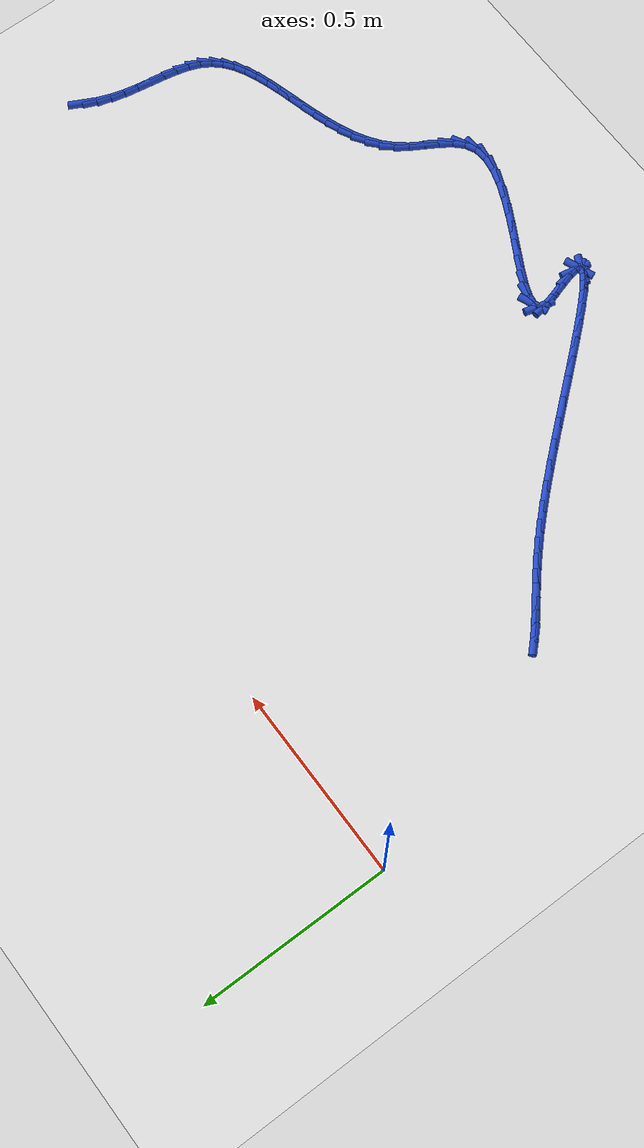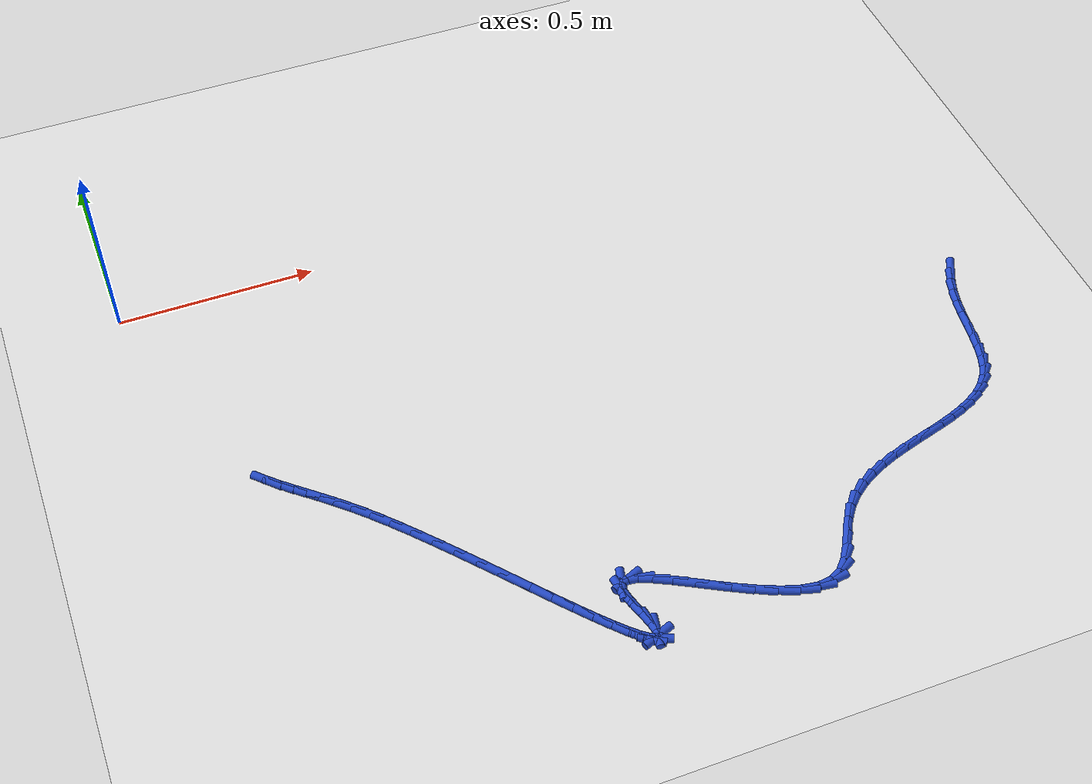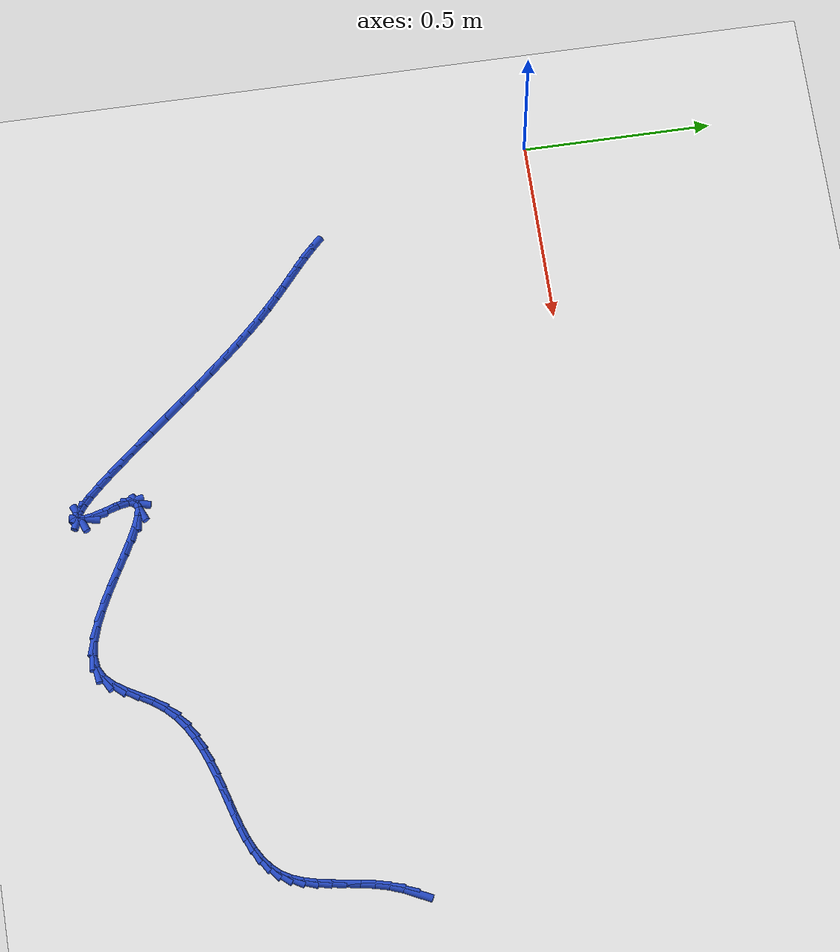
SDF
<sdf version="1.6">
 <world name="default">
  <model name="ground_plane">
   <static>1</static>
   <link name="link">
    <collision name="collision">
     <geometry><plane><normal>0 0 1</normal><size>100 100</size></plane></geometry>
     <surface><friction><ode><mu>100</mu><mu2>50</mu2></ode></friction></surface>
    </collision>
    <visual name="visual">
     <cast_shadows>0</cast_shadows>
     <geometry><plane><normal>0 0 1</normal><size>100 100</size></plane></geometry>
     <material>
      <script><uri>file://media/materials/scripts/gazebo.material</uri><name>Gazebo/WhiteGlow</name></script>
     </material>
    </visual>
   </link>
  </model>
  <model name="line">
   <link name="link_128">
    <pose>2.0384126829129796 -0.5853643524495513 0.01 0 1.57 1.1020676471896071</pose>
    <collision name="collision">
     <geometry><cylinder><radius>0.01</radius><length>0.08</length></cylinder></geometry>
    </collision>
    <visual name="visual">
     <material>
      <script><name>Gazebo/Blue</name><uri>file://media/materials/scripts/gazebo.material</uri></script>
     </material>
     <geometry><cylinder><radius>0.01</radius><length>0.08</length></cylinder></geometry>
    </visual>
   </link>
   <link name="link_129">
    <pose>2.0218537239604073 -0.6180658126746337 0.01 0 1.57 1.2054381293203713</pose>
    <collision name="collision">
     <geometry><cylinder><radius>0.01</radius><length>0.08</length></cylinder></geometry>
    </collision>
    <visual name="visual">
     <material>
      <script><name>Gazebo/Blue</name><uri>file://media/materials/scripts/gazebo.material</uri></script>
     </material>
     <geometry><cylinder><radius>0.01</radius><length>0.08</length></cylinder></geometry>
    </visual>
   </link>
   <link name="link_130">
    <pose>2.0086993570727087 -0.6524533821683262 0.01 0 1.57 1.3068314863150567</pose>
    <collision name="collision">
     <geometry><cylinder><radius>0.01</radius><length>0.08</length></cylinder></geometry>
    </collision>
    <visual name="visual">
     <material>
      <script><name>Gazebo/Blue</name><uri>file://media/materials/scripts/gazebo.material</uri></script>
     </material>
     <geometry><cylinder><radius>0.01</radius><length>0.08</length></cylinder></geometry>
    </visual>
   </link>
   <link name="link_131">
    <pose>1.9989859690418357 -0.6883927585196669 0.01 0 1.57 1.3751119026606904</pose>
    <collision name="collision">
     <geometry><cylinder><radius>0.01</radius><length>0.08</length></cylinder></geometry>
    </collision>
    <visual name="visual">
     <material>
      <script><name>Gazebo/Blue</name><uri>file://media/materials/scripts/gazebo.material</uri></script>
     </material>
     <geometry><cylinder><radius>0.01</radius><length>0.08</length></cylinder></geometry>
    </visual>
   </link>
   <link name="link_132">
    <pose>1.9916957051243742 -0.7251712177328626 0.01 0 1.57 1.4102000938463215</pose>
    <collision name="collision">
     <geometry><cylinder><radius>0.01</radius><length>0.08</length></cylinder></geometry>
    </collision>
    <visual name="visual">
     <material>
      <script><name>Gazebo/Blue</name><uri>file://media/materials/scripts/gazebo.material</uri></script>
     </material>
     <geometry><cylinder><radius>0.01</radius><length>0.08</length></cylinder></geometry>
    </visual>
   </link>
   <link name="link_133">
    <pose>1.9857250589611575 -0.7620290420809289 0.01 0 1.57 1.413053796381409</pose>
    <collision name="collision">
     <geometry><cylinder><radius>0.01</radius><length>0.08</length></cylinder></geometry>
    </collision>
    <visual name="visual">
     <material>
      <script><name>Gazebo/Blue</name><uri>file://media/materials/scripts/gazebo.material</uri></script>
     </material>
     <geometry><cylinder><radius>0.01</radius><length>0.08</length></cylinder></geometry>
    </visual>
   </link>
   <link name="link_134">
    <pose>1.979970524193019 -0.7982065138368796 0.01 0 1.57 1.3818725976547206</pose>
    <collision name="collision">
     <geometry><cylinder><radius>0.01</radius><length>0.08</length></cylinder></geometry>
    </collision>
    <visual name="visual">
     <material>
      <script><name>Gazebo/Blue</name><uri>file://media/materials/scripts/gazebo.material</uri></script>
     </material>
     <geometry><cylinder><radius>0.01</radius><length>0.08</length></cylinder></geometry>
    </visual>
   </link>
   <link name="link_135">
    <pose>1.9733285944607903 -0.8329439152737296 0.01 0 1.57 1.3114530108556537</pose>
    <collision name="collision">
     <geometry><cylinder><radius>0.01</radius><length>0.08</length></cylinder></geometry>
    </collision>
    <visual name="visual">
     <material>
      <script><name>Gazebo/Blue</name><uri>file://media/materials/scripts/gazebo.material</uri></script>
     </material>
     <geometry><cylinder><radius>0.01</radius><length>0.08</length></cylinder></geometry>
    </visual>
   </link>
   <link name="link_136">
    <pose>1.964695763405304 -0.8654815286644909 0.01 0 1.57 1.1933248786386343</pose>
    <collision name="collision">
     <geometry><cylinder><radius>0.01</radius><length>0.08</length></cylinder></geometry>
    </collision>
    <visual name="visual">
     <material>
      <script><name>Gazebo/Blue</name><uri>file://media/materials/scripts/gazebo.material</uri></script>
     </material>
     <geometry><cylinder><radius>0.01</radius><length>0.08</length></cylinder></geometry>
    </visual>
   </link>
   <link name="link_137">
    <pose>1.9529685246673936 -0.8950596362821791 0.01 0 1.57 1.0196400141411681</pose>
    <collision name="collision">
     <geometry><cylinder><radius>0.01</radius><length>0.08</length></cylinder></geometry>
    </collision>
    <visual name="visual">
     <material>
      <script><name>Gazebo/Blue</name><uri>file://media/materials/scripts/gazebo.material</uri></script>
     </material>
     <geometry><cylinder><radius>0.01</radius><length>0.08</length></cylinder></geometry>
    </visual>
   </link>
   <link name="link_138">
    <pose>1.9370633860161814 -0.920934385312817 0.01 0 1.57 0.821339385393191</pose>
    <collision name="collision">
     <geometry><cylinder><radius>0.01</radius><length>0.08</length></cylinder></geometry>
    </collision>
    <visual name="visual">
     <material>
      <script><name>Gazebo/Blue</name><uri>file://media/materials/scripts/gazebo.material</uri></script>
     </material>
     <geometry><cylinder><radius>0.01</radius><length>0.08</length></cylinder></geometry>
    </visual>
   </link>
   <link name="link_139">
    <pose>1.916602653403736 -0.9429213990590894 0.01 0 1.57 0.6492842530441527</pose>
    <collision name="collision">
     <geometry><cylinder><radius>0.01</radius><length>0.08</length></cylinder></geometry>
    </collision>
    <visual name="visual">
     <material>
      <script><name>Gazebo/Blue</name><uri>file://media/materials/scripts/gazebo.material</uri></script>
     </material>
     <geometry><cylinder><radius>0.01</radius><length>0.08</length></cylinder></geometry>
    </visual>
   </link>
   <link name="link_140">
    <pose>1.8920857524666943 -0.9615315810423436 0.01 0 1.57 0.5131232128763107</pose>
    <collision name="collision">
     <geometry><cylinder><radius>0.01</radius><length>0.08</length></cylinder></geometry>
    </collision>
    <visual name="visual">
     <material>
      <script><name>Gazebo/Blue</name><uri>file://media/materials/scripts/gazebo.material</uri></script>
     </material>
     <geometry><cylinder><radius>0.01</radius><length>0.08</length></cylinder></geometry>
    </visual>
   </link>
   <link name="link_141">
    <pose>1.864066895321039 -0.9773192632418778 0.01 0 1.57 0.41164112021405036</pose>
    <collision name="collision">
     <geometry><cylinder><radius>0.01</radius><length>0.08</length></cylinder></geometry>
    </collision>
    <visual name="visual">
     <material>
      <script><name>Gazebo/Blue</name><uri>file://media/materials/scripts/gazebo.material</uri></script>
     </material>
     <geometry><cylinder><radius>0.01</radius><length>0.08</length></cylinder></geometry>
    </visual>
   </link>
   <link name="link_142">
    <pose>1.8331002940827512 -0.9908387776369907 0.01 0 1.57 0.34013238395543505</pose>
    <collision name="collision">
     <geometry><cylinder><radius>0.01</radius><length>0.08</length></cylinder></geometry>
    </collision>
    <visual name="visual">
     <material>
      <script><name>Gazebo/Blue</name><uri>file://media/materials/scripts/gazebo.material</uri></script>
     </material>
     <geometry><cylinder><radius>0.01</radius><length>0.08</length></cylinder></geometry>
    </visual>
   </link>
   <link name="link_143">
    <pose>1.7997401608678123 -1.0026444562069803 0.01 0 1.57 0.2937055890224802</pose>
    <collision name="collision">
     <geometry><cylinder><radius>0.01</radius><length>0.08</length></cylinder></geometry>
    </collision>
    <visual name="visual">
     <material>
      <script><name>Gazebo/Blue</name><uri>file://media/materials/scripts/gazebo.material</uri></script>
     </material>
     <geometry><cylinder><radius>0.01</radius><length>0.08</length></cylinder></geometry>
    </visual>
   </link>
   <link name="link_144">
    <pose>1.7645407077922066 -1.0132906309311447 0.01 0 1.57 0.26856364922360815</pose>
    <collision name="collision">
     <geometry><cylinder><radius>0.01</radius><length>0.08</length></cylinder></geometry>
    </collision>
    <visual name="visual">
     <material>
      <script><name>Gazebo/Blue</name><uri>file://media/materials/scripts/gazebo.material</uri></script>
     </material>
     <geometry><cylinder><radius>0.01</radius><length>0.08</length></cylinder></geometry>
    </visual>
   </link>
   <link name="link_145">
    <pose>1.728056146971915 -1.023331633788782 0.01 0 1.57 0.262258410264597</pose>
    <collision name="collision">
     <geometry><cylinder><radius>0.01</radius><length>0.08</length></cylinder></geometry>
    </collision>
    <visual name="visual">
     <material>
      <script><name>Gazebo/Blue</name><uri>file://media/materials/scripts/gazebo.material</uri></script>
     </material>
     <geometry><cylinder><radius>0.01</radius><length>0.08</length></cylinder></geometry>
    </visual>
   </link>
   <link name="link_146">
    <pose>1.690840690522919 -1.0333217967591908 0.01 0 1.57 0.2736002145043174</pose>
    <collision name="collision">
     <geometry><cylinder><radius>0.01</radius><length>0.08</length></cylinder></geometry>
    </collision>
    <visual name="visual">
     <material>
      <script><name>Gazebo/Blue</name><uri>file://media/materials/scripts/gazebo.material</uri></script>
     </material>
     <geometry><cylinder><radius>0.01</radius><length>0.08</length></cylinder></geometry>
    </visual>
   </link>
   <link name="link_147">
    <pose>1.6534485505612018 -1.043815451821669 0.01 0 1.57 0.3025011852617481</pose>
    <collision name="collision">
     <geometry><cylinder><radius>0.01</radius><length>0.08</length></cylinder></geometry>
    </collision>
    <visual name="visual">
     <material>
      <script><name>Gazebo/Blue</name><uri>file://media/materials/scripts/gazebo.material</uri></script>
     </material>
     <geometry><cylinder><radius>0.01</radius><length>0.08</length></cylinder></geometry>
    </visual>
   </link>
   <link name="link_148">
    <pose>1.6164339392027434 -1.0553669309555151 0.01 0 1.57 0.34981312905699463</pose>
    <collision name="collision">
     <geometry><cylinder><radius>0.01</radius><length>0.08</length></cylinder></geometry>
    </collision>
    <visual name="visual">
     <material>
      <script><name>Gazebo/Blue</name><uri>file://media/materials/scripts/gazebo.material</uri></script>
     </material>
     <geometry><cylinder><radius>0.01</radius><length>0.08</length></cylinder></geometry>
    </visual>
   </link>
   <link name="link_149">
    <pose>1.580351068563528 -1.0685305661400268 0.01 0 1.57 0.41710662039718427</pose>
    <collision name="collision">
     <geometry><cylinder><radius>0.01</radius><length>0.08</length></cylinder></geometry>
    </collision>
    <visual name="visual">
     <material>
      <script><name>Gazebo/Blue</name><uri>file://media/materials/scripts/gazebo.material</uri></script>
     </material>
     <geometry><cylinder><radius>0.01</radius><length>0.08</length></cylinder></geometry>
    </visual>
   </link>
   <link name="link_150">
    <pose>1.5457541507595371 -1.0838606893545026 0.01 0 1.57 0.5062498102647702</pose>
    <collision name="collision">
     <geometry><cylinder><radius>0.01</radius><length>0.08</length></cylinder></geometry>
    </collision>
    <visual name="visual">
     <material>
      <script><name>Gazebo/Blue</name><uri>file://media/materials/scripts/gazebo.material</uri></script>
     </material>
     <geometry><cylinder><radius>0.01</radius><length>0.08</length></cylinder></geometry>
    </visual>
   </link>
   <link name="link_151">
    <pose>1.5131973979067523 -1.1019116325782408 0.01 0 1.57 0.6185767079432916</pose>
    <collision name="collision">
     <geometry><cylinder><radius>0.01</radius><length>0.08</length></cylinder></geometry>
    </collision>
    <visual name="visual">
     <material>
      <script><name>Gazebo/Blue</name><uri>file://media/materials/scripts/gazebo.material</uri></script>
     </material>
     <geometry><cylinder><radius>0.01</radius><length>0.08</length></cylinder></geometry>
    </visual>
   </link>
   <link name="link_152">
    <pose>1.483235022121155 -1.1232377277905394 0.01 0 1.57 0.7535015833589273</pose>
    <collision name="collision">
     <geometry><cylinder><radius>0.01</radius><length>0.08</length></cylinder></geometry>
    </collision>
    <visual name="visual">
     <material>
      <script><name>Gazebo/Blue</name><uri>file://media/materials/scripts/gazebo.material</uri></script>
     </material>
     <geometry><cylinder><radius>0.01</radius><length>0.08</length></cylinder></geometry>
    </visual>
   </link>
   <link name="link_153">
    <pose>1.4564212355187285 -1.1483933069706969 0.01 0 1.57 0.9048321552499752</pose>
    <collision name="collision">
     <geometry><cylinder><radius>0.01</radius><length>0.08</length></cylinder></geometry>
    </collision>
    <visual name="visual">
     <material>
      <script><name>Gazebo/Blue</name><uri>file://media/materials/scripts/gazebo.material</uri></script>
     </material>
     <geometry><cylinder><radius>0.01</radius><length>0.08</length></cylinder></geometry>
    </visual>
   </link>
   <link name="link_154">
    <pose>1.4332638512727545 -1.1778666488042124 0.01 0 1.57 1.0161937524657672</pose>
    <collision name="collision">
     <geometry><cylinder><radius>0.01</radius><length>0.08</length></cylinder></geometry>
    </collision>
    <visual name="visual">
     <material>
      <script><name>Gazebo/Blue</name><uri>file://media/materials/scripts/gazebo.material</uri></script>
     </material>
     <geometry><cylinder><radius>0.01</radius><length>0.08</length></cylinder></geometry>
    </visual>
   </link>
   <link name="link_155">
    <pose>1.4130796254283404 -1.210450449236132 0.01 0 1.57 1.0406467848830772</pose>
    <collision name="collision">
     <geometry><cylinder><radius>0.01</radius><length>0.08</length></cylinder></geometry>
    </collision>
    <visual name="visual">
     <material>
      <script><name>Gazebo/Blue</name><uri>file://media/materials/scripts/gazebo.material</uri></script>
     </material>
     <geometry><cylinder><radius>0.01</radius><length>0.08</length></cylinder></geometry>
    </visual>
   </link>
   <link name="link_156">
    <pose>1.3939210763352454 -1.2431376419957703 0.01 0 1.57 0.9748246384287034</pose>
    <collision name="collision">
     <geometry><cylinder><radius>0.01</radius><length>0.08</length></cylinder></geometry>
    </collision>
    <visual name="visual">
     <material>
      <script><name>Gazebo/Blue</name><uri>file://media/materials/scripts/gazebo.material</uri></script>
     </material>
     <geometry><cylinder><radius>0.01</radius><length>0.08</length></cylinder></geometry>
    </visual>
   </link>
   <link name="link_157">
    <pose>1.3737796709719956 -1.2728342483974955 0.01 0 1.57 0.7956502030613241</pose>
    <collision name="collision">
     <geometry><cylinder><radius>0.01</radius><length>0.08</length></cylinder></geometry>
    </collision>
    <visual name="visual">
     <material>
      <script><name>Gazebo/Blue</name><uri>file://media/materials/scripts/gazebo.material</uri></script>
     </material>
     <geometry><cylinder><radius>0.01</radius><length>0.08</length></cylinder></geometry>
    </visual>
   </link>
   <link name="link_158">
    <pose>1.3506468763171162 -1.296446289755679 0.01 0 1.57 0.4742439866928621</pose>
    <collision name="collision">
     <geometry><cylinder><radius>0.01</radius><length>0.08</length></cylinder></geometry>
    </collision>
    <visual name="visual">
     <material>
      <script><name>Gazebo/Blue</name><uri>file://media/materials/scripts/gazebo.material</uri></script>
     </material>
     <geometry><cylinder><radius>0.01</radius><length>0.08</length></cylinder></geometry>
    </visual>
   </link>
   <link name="link_159">
    <pose>1.322517897989618 -1.310885359134001 0.01 0 1.57 0.1036612644955116</pose>
    <collision name="collision">
     <geometry><cylinder><radius>0.01</radius><length>0.08</length></cylinder></geometry>
    </collision>
    <visual name="visual">
     <material>
      <script><name>Gazebo/Blue</name><uri>file://media/materials/scripts/gazebo.material</uri></script>
     </material>
     <geometry><cylinder><radius>0.01</radius><length>0.08</length></cylinder></geometry>
    </visual>
   </link>
   <link name="link_160">
    <pose>1.2883143547766815 -1.3144436963717088 0.01 0 1.57 -0.14795668207671786</pose>
    <collision name="collision">
     <geometry><cylinder><radius>0.01</radius><length>0.08</length></cylinder></geometry>
    </collision>
    <visual name="visual">
     <material>
      <script><name>Gazebo/Blue</name><uri>file://media/materials/scripts/gazebo.material</uri></script>
     </material>
     <geometry><cylinder><radius>0.01</radius><length>0.08</length></cylinder></geometry>
    </visual>
   </link>
   <link name="link_161">
    <pose>1.2490947540528432 -1.3085981768888404 0.01 0 1.57 -0.30131071201421467</pose>
    <collision name="collision">
     <geometry><cylinder><radius>0.01</radius><length>0.08</length></cylinder></geometry>
    </collision>
    <visual name="visual">
     <material>
      <script><name>Gazebo/Blue</name><uri>file://media/materials/scripts/gazebo.material</uri></script>
     </material>
     <geometry><cylinder><radius>0.01</radius><length>0.08</length></cylinder></geometry>
    </visual>
   </link>
   <link name="link_162">
    <pose>1.2062178975193902 -1.2952732090294024 0.01 0 1.57 -0.39586501944337904</pose>
    <collision name="collision">
     <geometry><cylinder><radius>0.01</radius><length>0.08</length></cylinder></geometry>
    </collision>
    <visual name="visual">
     <material>
      <script><name>Gazebo/Blue</name><uri>file://media/materials/scripts/gazebo.material</uri></script>
     </material>
     <geometry><cylinder><radius>0.01</radius><length>0.08</length></cylinder></geometry>
    </visual>
   </link>
   <link name="link_163">
    <pose>1.1610425868776106 -1.2763932011373997 0.01 0 1.57 -0.45411609971498357</pose>
    <collision name="collision">
     <geometry><cylinder><radius>0.01</radius><length>0.08</length></cylinder></geometry>
    </collision>
    <visual name="visual">
     <material>
      <script><name>Gazebo/Blue</name><uri>file://media/materials/scripts/gazebo.material</uri></script>
     </material>
     <geometry><cylinder><radius>0.01</radius><length>0.08</length></cylinder></geometry>
    </visual>
   </link>
   <link name="link_164">
    <pose>1.1149276238287922 -1.2538825615568385 0.01 0 1.57 -0.48732580417307425</pose>
    <collision name="collision">
     <geometry><cylinder><radius>0.01</radius><length>0.08</length></cylinder></geometry>
    </collision>
    <visual name="visual">
     <material>
      <script><name>Gazebo/Blue</name><uri>file://media/materials/scripts/gazebo.material</uri></script>
     </material>
     <geometry><cylinder><radius>0.01</radius><length>0.08</length></cylinder></geometry>
    </visual>
   </link>
   <link name="link_165">
    <pose>1.0692318100742226 -1.2296656986317238 0.01 0 1.57 -0.5001094218272142</pose>
    <collision name="collision">
     <geometry><cylinder><radius>0.01</radius><length>0.08</length></cylinder></geometry>
    </collision>
    <visual name="visual">
     <material>
      <script><name>Gazebo/Blue</name><uri>file://media/materials/scripts/gazebo.material</uri></script>
     </material>
     <geometry><cylinder><radius>0.01</radius><length>0.08</length></cylinder></geometry>
    </visual>
   </link>
   <link name="link_166">
    <pose>1.025313947315191 -1.2056670207060622 0.01 0 1.57 -0.4919818066167312</pose>
    <collision name="collision">
     <geometry><cylinder><radius>0.01</radius><length>0.08</length></cylinder></geometry>
    </collision>
    <visual name="visual">
     <material>
      <script><name>Gazebo/Blue</name><uri>file://media/materials/scripts/gazebo.material</uri></script>
     </material>
     <geometry><cylinder><radius>0.01</radius><length>0.08</length></cylinder></geometry>
    </visual>
   </link>
   <link name="link_167">
    <pose>0.9845328372529851 -1.1838109361238587 0.01 0 1.57 -0.4558192125467498</pose>
    <collision name="collision">
     <geometry><cylinder><radius>0.01</radius><length>0.08</length></cylinder></geometry>
    </collision>
    <visual name="visual">
     <material>
      <script><name>Gazebo/Blue</name><uri>file://media/materials/scripts/gazebo.material</uri></script>
     </material>
     <geometry><cylinder><radius>0.01</radius><length>0.08</length></cylinder></geometry>
    </visual>
   </link>
   <link name="link_168">
    <pose>0.9482472815888924 -1.1660218532291187 0.01 0 1.57 -0.3698437912424196</pose>
    <collision name="collision">
     <geometry><cylinder><radius>0.01</radius><length>0.08</length></cylinder></geometry>
    </collision>
    <visual name="visual">
     <material>
      <script><name>Gazebo/Blue</name><uri>file://media/materials/scripts/gazebo.material</uri></script>
     </material>
     <geometry><cylinder><radius>0.01</radius><length>0.08</length></cylinder></geometry>
    </visual>
   </link>
   <link name="link_169">
    <pose>0.9178160820242003 -1.1542241803658482 0.01 0 1.57 -0.16565908388711031</pose>
    <collision name="collision">
     <geometry><cylinder><radius>0.01</radius><length>0.08</length></cylinder></geometry>
    </collision>
    <visual name="visual">
     <material>
      <script><name>Gazebo/Blue</name><uri>file://media/materials/scripts/gazebo.material</uri></script>
     </material>
     <geometry><cylinder><radius>0.01</radius><length>0.08</length></cylinder></geometry>
    </visual>
   </link>
   <link name="link_170">
    <pose>0.8945980402601985 -1.1503423258780527 0.01 0 1.57 0.3863749336521207</pose>
    <collision name="collision">
     <geometry><cylinder><radius>0.01</radius><length>0.08</length></cylinder></geometry>
    </collision>
    <visual name="visual">
     <material>
      <script><name>Gazebo/Blue</name><uri>file://media/materials/scripts/gazebo.material</uri></script>
     </material>
     <geometry><cylinder><radius>0.01</radius><length>0.08</length></cylinder></geometry>
    </visual>
   </link>
   <link name="link_171">
    <pose>0.8799519579981742 -1.1563006981097383 0.01 0 1.57 1.3107636914189067</pose>
    <collision name="collision">
     <geometry><cylinder><radius>0.01</radius><length>0.08</length></cylinder></geometry>
    </collision>
    <visual name="visual">
     <material>
      <script><name>Gazebo/Blue</name><uri>file://media/materials/scripts/gazebo.material</uri></script>
     </material>
     <geometry><cylinder><radius>0.01</radius><length>0.08</length></cylinder></geometry>
    </visual>
   </link>
   <link name="link_172">
    <pose>0.8752366369394153 -1.1740237054049105 0.01 0 1.57 -1.3816168170314826</pose>
    <collision name="collision">
     <geometry><cylinder><radius>0.01</radius><length>0.08</length></cylinder></geometry>
    </collision>
    <visual name="visual">
     <material>
      <script><name>Gazebo/Blue</name><uri>file://media/materials/scripts/gazebo.material</uri></script>
     </material>
     <geometry><cylinder><radius>0.01</radius><length>0.08</length></cylinder></geometry>
    </visual>
   </link>
   <link name="link_173">
    <pose>0.8810476598084532 -1.2043733641142413 0.01 0 1.57 -1.2673025398714635</pose>
    <collision name="collision">
     <geometry><cylinder><radius>0.01</radius><length>0.08</length></cylinder></geometry>
    </collision>
    <visual name="visual">
     <material>
      <script><name>Gazebo/Blue</name><uri>file://media/materials/scripts/gazebo.material</uri></script>
     </material>
     <geometry><cylinder><radius>0.01</radius><length>0.08</length></cylinder></geometry>
    </visual>
   </link>
   <link name="link_174">
    <pose>0.8923001995038585 -1.2403046257724817 0.01 0 1.57 -1.283497091787896</pose>
    <collision name="collision">
     <geometry><cylinder><radius>0.01</radius><length>0.08</length></cylinder></geometry>
    </collision>
    <visual name="visual">
     <material>
      <script><name>Gazebo/Blue</name><uri>file://media/materials/scripts/gazebo.material</uri></script>
     </material>
     <geometry><cylinder><radius>0.01</radius><length>0.08</length></cylinder></geometry>
    </visual>
   </link>
   <link name="link_175">
    <pose>0.9014902840317681 -1.271407491944954 0.01 0 1.57 -1.4136832610905539</pose>
    <collision name="collision">
     <geometry><cylinder><radius>0.01</radius><length>0.08</length></cylinder></geometry>
    </collision>
    <visual name="visual">
     <material>
      <script><name>Gazebo/Blue</name><uri>file://media/materials/scripts/gazebo.material</uri></script>
     </material>
     <geometry><cylinder><radius>0.01</radius><length>0.08</length></cylinder></geometry>
    </visual>
   </link>
   <link name="link_176">
    <pose>0.9048341393885383 -1.2925151963942811 0.01 0 1.57 1.3764577175796735</pose>
    <collision name="collision">
     <geometry><cylinder><radius>0.01</radius><length>0.08</length></cylinder></geometry>
    </collision>
    <visual name="visual">
     <material>
      <script><name>Gazebo/Blue</name><uri>file://media/materials/scripts/gazebo.material</uri></script>
     </material>
     <geometry><cylinder><radius>0.01</radius><length>0.08</length></cylinder></geometry>
    </visual>
   </link>
   <link name="link_177">
    <pose>0.9025529431427469 -1.3041053036294403 0.01 0 1.57 0.3610775839142519</pose>
    <collision name="collision">
     <geometry><cylinder><radius>0.01</radius><length>0.08</length></cylinder></geometry>
    </collision>
    <visual name="visual">
     <material>
      <script><name>Gazebo/Blue</name><uri>file://media/materials/scripts/gazebo.material</uri></script>
     </material>
     <geometry><cylinder><radius>0.01</radius><length>0.08</length></cylinder></geometry>
    </visual>
   </link>
   <link name="link_178">
    <pose>0.8950648912478949 -1.306933043671105 0.01 0 1.57 -0.3992317937413595</pose>
    <collision name="collision">
     <geometry><cylinder><radius>0.01</radius><length>0.08</length></cylinder></geometry>
    </collision>
    <visual name="visual">
     <material>
      <script><name>Gazebo/Blue</name><uri>file://media/materials/scripts/gazebo.material</uri></script>
     </material>
     <geometry><cylinder><radius>0.01</radius><length>0.08</length></cylinder></geometry>
    </visual>
   </link>
   <link name="link_179">
    <pose>0.8827881796574838 -1.3017536465399484 0.01 0 1.57 -0.6414188686294306</pose>
    <collision name="collision">
     <geometry><cylinder><radius>0.01</radius><length>0.08</length></cylinder></geometry>
    </collision>
    <visual name="visual">
     <material>
      <script><name>Gazebo/Blue</name><uri>file://media/materials/scripts/gazebo.material</uri></script>
     </material>
     <geometry><cylinder><radius>0.01</radius><length>0.08</length></cylinder></geometry>
    </visual>
   </link>
   <link name="link_180">
    <pose>0.8661410043250146 -1.289322342256644 0.01 0 1.57 -0.7431372132537449</pose>
    <collision name="collision">
     <geometry><cylinder><radius>0.01</radius><length>0.08</length></cylinder></geometry>
    </collision>
    <visual name="visual">
     <material>
      <script><name>Gazebo/Blue</name><uri>file://media/materials/scripts/gazebo.material</uri></script>
     </material>
     <geometry><cylinder><radius>0.01</radius><length>0.08</length></cylinder></geometry>
    </visual>
   </link>
   <link name="link_181">
    <pose>0.845541561203988 -1.2703943608418646 0.01 0 1.57 -0.7963788951232865</pose>
    <collision name="collision">
     <geometry><cylinder><radius>0.01</radius><length>0.08</length></cylinder></geometry>
    </collision>
    <visual name="visual">
     <material>
      <script><name>Gazebo/Blue</name><uri>file://media/materials/scripts/gazebo.material</uri></script>
     </material>
     <geometry><cylinder><radius>0.01</radius><length>0.08</length></cylinder></geometry>
    </visual>
   </link>
   <link name="link_182">
    <pose>0.8214080462479049 -1.245724932316283 0.01 0 1.57 -0.8276584322520323</pose>
    <collision name="collision">
     <geometry><cylinder><radius>0.01</radius><length>0.08</length></cylinder></geometry>
    </collision>
    <visual name="visual">
     <material>
      <script><name>Gazebo/Blue</name><uri>file://media/materials/scripts/gazebo.material</uri></script>
     </material>
     <geometry><cylinder><radius>0.01</radius><length>0.08</length></cylinder></geometry>
    </visual>
   </link>
   <link name="link_183">
    <pose>0.7941586554102668 -1.2160692867005733 0.01 0 1.57 -0.8470360028289927</pose>
    <collision name="collision">
     <geometry><cylinder><radius>0.01</radius><length>0.08</length></cylinder></geometry>
    </collision>
    <visual name="visual">
     <material>
      <script><name>Gazebo/Blue</name><uri>file://media/materials/scripts/gazebo.material</uri></script>
     </material>
     <geometry><cylinder><radius>0.01</radius><length>0.08</length></cylinder></geometry>
    </visual>
   </link>
   <link name="link_184">
    <pose>0.7642115846445747 -1.1821826540154081 0.01 0 1.57 -0.8590670595384959</pose>
    <collision name="collision">
     <geometry><cylinder><radius>0.01</radius><length>0.08</length></cylinder></geometry>
    </collision>
    <visual name="visual">
     <material>
      <script><name>Gazebo/Blue</name><uri>file://media/materials/scripts/gazebo.material</uri></script>
     </material>
     <geometry><cylinder><radius>0.01</radius><length>0.08</length></cylinder></geometry>
    </visual>
   </link>
   <link name="link_185">
    <pose>0.7319850299043298 -1.1448202642814618 0.01 0 1.57 -0.8660508272663273</pose>
    <collision name="collision">
     <geometry><cylinder><radius>0.01</radius><length>0.08</length></cylinder></geometry>
    </collision>
    <visual name="visual">
     <material>
      <script><name>Gazebo/Blue</name><uri>file://media/materials/scripts/gazebo.material</uri></script>
     </material>
     <geometry><cylinder><radius>0.01</radius><length>0.08</length></cylinder></geometry>
    </visual>
   </link>
   <link name="link_186">
    <pose>0.6978971871430317 -1.1047373475194049 0.01 0 1.57 -0.8692094973307869</pose>
    <collision name="collision">
     <geometry><cylinder><radius>0.01</radius><length>0.08</length></cylinder></geometry>
    </collision>
    <visual name="visual">
     <material>
      <script><name>Gazebo/Blue</name><uri>file://media/materials/scripts/gazebo.material</uri></script>
     </material>
     <geometry><cylinder><radius>0.01</radius><length>0.08</length></cylinder></geometry>
    </visual>
   </link>
   <link name="link_187">
    <pose>0.6623662523141834 -1.0626891337499134 0.01 0 1.57 -0.869177346529146</pose>
    <collision name="collision">
     <geometry><cylinder><radius>0.01</radius><length>0.08</length></cylinder></geometry>
    </collision>
    <visual name="visual">
     <material>
      <script><name>Gazebo/Blue</name><uri>file://media/materials/scripts/gazebo.material</uri></script>
     </material>
     <geometry><cylinder><radius>0.01</radius><length>0.08</length></cylinder></geometry>
    </visual>
   </link>
   <link name="link_188">
    <pose>0.6258104213712853 -1.0194308529936595 0.01 0 1.57 -0.8662175224213202</pose>
    <collision name="collision">
     <geometry><cylinder><radius>0.01</radius><length>0.08</length></cylinder></geometry>
    </collision>
    <visual name="visual">
     <material>
      <script><name>Gazebo/Blue</name><uri>file://media/materials/scripts/gazebo.material</uri></script>
     </material>
     <geometry><cylinder><radius>0.01</radius><length>0.08</length></cylinder></geometry>
    </visual>
   </link>
   <link name="link_189">
    <pose>0.5886478902678383 -0.9757177352713164 0.01 0 1.57 -0.8603122766393425</pose>
    <collision name="collision">
     <geometry><cylinder><radius>0.01</radius><length>0.08</length></cylinder></geometry>
    </collision>
    <visual name="visual">
     <material>
      <script><name>Gazebo/Blue</name><uri>file://media/materials/scripts/gazebo.material</uri></script>
     </material>
     <geometry><cylinder><radius>0.01</radius><length>0.08</length></cylinder></geometry>
    </visual>
   </link>
   <link name="link_190">
    <pose>0.5512968549573423 -0.9323050106035564 0.01 0 1.57 -0.8511795685699444</pose>
    <collision name="collision">
     <geometry><cylinder><radius>0.01</radius><length>0.08</length></cylinder></geometry>
    </collision>
    <visual name="visual">
     <material>
      <script><name>Gazebo/Blue</name><uri>file://media/materials/scripts/gazebo.material</uri></script>
     </material>
     <geometry><cylinder><radius>0.01</radius><length>0.08</length></cylinder></geometry>
    </visual>
   </link>
   <link name="link_191">
    <pose>0.5141755113933004 -0.8899479090110545 0.01 0 1.57 -0.8382288357266359</pose>
    <collision name="collision">
     <geometry><cylinder><radius>0.01</radius><length>0.08</length></cylinder></geometry>
    </collision>
    <visual name="visual">
     <material>
      <script><name>Gazebo/Blue</name><uri>file://media/materials/scripts/gazebo.material</uri></script>
     </material>
     <geometry><cylinder><radius>0.01</radius><length>0.08</length></cylinder></geometry>
    </visual>
   </link>
   <link name="link_192">
    <pose>0.47770205552921263 -0.8494016605144827 0.01 0 1.57 -0.8204414420061373</pose>
    <collision name="collision">
     <geometry><cylinder><radius>0.01</radius><length>0.08</length></cylinder></geometry>
    </collision>
    <visual name="visual">
     <material>
      <script><name>Gazebo/Blue</name><uri>file://media/materials/scripts/gazebo.material</uri></script>
     </material>
     <geometry><cylinder><radius>0.01</radius><length>0.08</length></cylinder></geometry>
    </visual>
   </link>
   <link name="link_193">
    <pose>0.44229468331858013 -0.8114214951345148 0.01 0 1.57 -0.7961305630680047</pose>
    <collision name="collision">
     <geometry><cylinder><radius>0.01</radius><length>0.08</length></cylinder></geometry>
    </collision>
    <visual name="visual">
     <material>
      <script><name>Gazebo/Blue</name><uri>file://media/materials/scripts/gazebo.material</uri></script>
     </material>
     <geometry><cylinder><radius>0.01</radius><length>0.08</length></cylinder></geometry>
    </visual>
   </link>
   <link name="link_194">
    <pose>0.4083714078028891 -0.7767621351016207 0.01 0 1.57 -0.7660079835088538</pose>
    <collision name="collision">
     <geometry><cylinder><radius>0.01</radius><length>0.08</length></cylinder></geometry>
    </collision>
    <visual name="visual">
     <material>
      <script><name>Gazebo/Blue</name><uri>file://media/materials/scripts/gazebo.material</uri></script>
     </material>
     <geometry><cylinder><radius>0.01</radius><length>0.08</length></cylinder></geometry>
    </visual>
   </link>
   <link name="link_195">
    <pose>0.37622952063443477 -0.7458431626131296 0.01 0 1.57 -0.7385986624627001</pose>
    <collision name="collision">
     <geometry><cylinder><radius>0.01</radius><length>0.08</length></cylinder></geometry>
    </collision>
    <visual name="visual">
     <material>
      <script><name>Gazebo/Blue</name><uri>file://media/materials/scripts/gazebo.material</uri></script>
     </material>
     <geometry><cylinder><radius>0.01</radius><length>0.08</length></cylinder></geometry>
    </visual>
   </link>
   <link name="link_196">
    <pose>0.34583707038421496 -0.7181701334629463 0.01 0 1.57 -0.7175799578258797</pose>
    <collision name="collision">
     <geometry><cylinder><radius>0.01</radius><length>0.08</length></cylinder></geometry>
    </collision>
    <visual name="visual">
     <material>
      <script><name>Gazebo/Blue</name><uri>file://media/materials/scripts/gazebo.material</uri></script>
     </material>
     <geometry><cylinder><radius>0.01</radius><length>0.08</length></cylinder></geometry>
    </visual>
   </link>
   <link name="link_197">
    <pose>0.317106495964852 -0.6930942229919723 0.01 0 1.57 -0.7054509363461365</pose>
    <collision name="collision">
     <geometry><cylinder><radius>0.01</radius><length>0.08</length></cylinder></geometry>
    </collision>
    <visual name="visual">
     <material>
      <script><name>Gazebo/Blue</name><uri>file://media/materials/scripts/gazebo.material</uri></script>
     </material>
     <geometry><cylinder><radius>0.01</radius><length>0.08</length></cylinder></geometry>
    </visual>
   </link>
   <link name="link_198">
    <pose>0.28995023628896893 -0.6699666065411092 0.01 0 1.57 -0.7046990906885029</pose>
    <collision name="collision">
     <geometry><cylinder><radius>0.01</radius><length>0.08</length></cylinder></geometry>
    </collision>
    <visual name="visual">
     <material>
      <script><name>Gazebo/Blue</name><uri>file://media/materials/scripts/gazebo.material</uri></script>
     </material>
     <geometry><cylinder><radius>0.01</radius><length>0.08</length></cylinder></geometry>
    </visual>
   </link>
   <link name="link_199">
    <pose>0.2642807302691881 -0.6481384594512585 0.01 0 1.57 -0.7174510048024546</pose>
    <collision name="collision">
     <geometry><cylinder><radius>0.01</radius><length>0.08</length></cylinder></geometry>
    </collision>
    <visual name="visual">
     <material>
      <script><name>Gazebo/Blue</name><uri>file://media/materials/scripts/gazebo.material</uri></script>
     </material>
     <geometry><cylinder><radius>0.01</radius><length>0.08</length></cylinder></geometry>
    </visual>
   </link>
   <link name="link_200">
    <pose>0.2400104168181339 -0.6269609570633237 0.01 0 1.57 -0.7450207707379903</pose>
    <collision name="collision">
     <geometry><cylinder><radius>0.01</radius><length>0.08</length></cylinder></geometry>
    </collision>
    <visual name="visual">
     <material>
      <script><name>Gazebo/Blue</name><uri>file://media/materials/scripts/gazebo.material</uri></script>
     </material>
     <geometry><cylinder><radius>0.01</radius><length>0.08</length></cylinder></geometry>
    </visual>
   </link>
   <link name="link_201">
    <pose>0.2170517348484287 -0.6057852747182058 0.01 0 1.57 -0.7874202186806191</pose>
    <collision name="collision">
     <geometry><cylinder><radius>0.01</radius><length>0.08</length></cylinder></geometry>
    </collision>
    <visual name="visual">
     <material>
      <script><name>Gazebo/Blue</name><uri>file://media/materials/scripts/gazebo.material</uri></script>
     </material>
     <geometry><cylinder><radius>0.01</radius><length>0.08</length></cylinder></geometry>
    </visual>
   </link>
  </model>
 </world>
</sdf>
